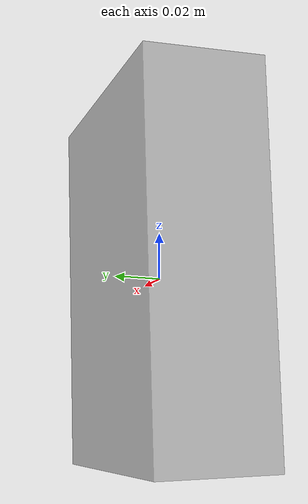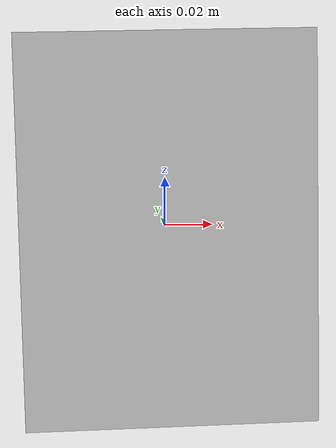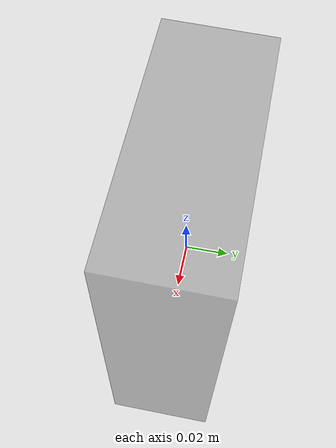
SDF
<?xml version="1.0" ?>
<sdf version="1.5">
    <model name="gel_block">
      <static>true</static>
      <link name="block">
        <pose>0 0 0 0 0 0</pose>
        <collision name="block_collision">
          <geometry>
            <mesh>
              <uri>model://gel_block/meshes/SimulatedUltrasound_GelBlockModel_Reference.dae</uri>
              <scale>0.001 0.001 0.001</scale>
            </mesh>
          </geometry>
        </collision>
        <visual name="block_visual">
          <transparency>0.5</transparency>
          <geometry>
            <mesh>
              <uri>model://gel_block/meshes/SimulatedUltrasound_GelBlockModel_Reference.dae</uri>
              <scale>0.001 0.001 0.001</scale>
            </mesh>
          </geometry>
          <cast_shadows>true</cast_shadows>
	  <material> <!-- Wheel material -->
            <ambient>0.5 0.5 0.5 1</ambient>
            <diffuse>0.5 0.5 0.5 1</diffuse>
            <specular>0.1 0.1 0.1 0</specular>
            <emissive>0 0 0 1</emissive>
          </material>
        </visual>
      </link>
      <static>true</static>
    </model>
</sdf>
